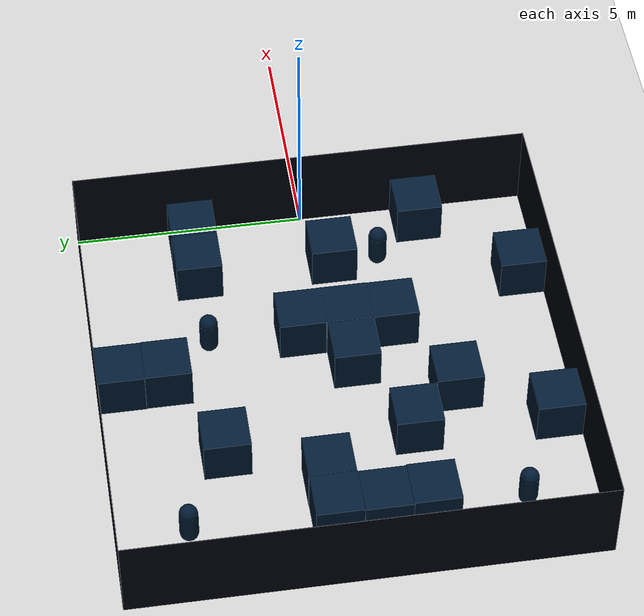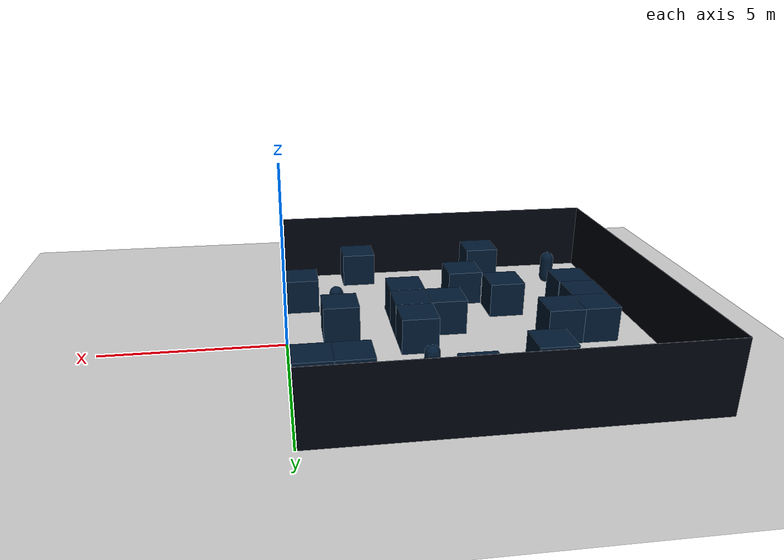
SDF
<sdf version='1.10'>
  <world name='rl_maze'>
    <physics name='1ms' type='ignored'>
      <max_step_size>0.0030000000000000001</max_step_size>
      <real_time_factor>1</real_time_factor>
      <real_time_update_rate>1000</real_time_update_rate>
    </physics>
    <plugin name='gz::sim::systems::Physics' filename='gz-sim-physics-system'/>
    <plugin name='gz::sim::systems::UserCommands' filename='gz-sim-user-commands-system'/>
    <plugin name='gz::sim::systems::SceneBroadcaster' filename='gz-sim-scene-broadcaster-system'/>
    <plugin name='gz::sim::systems::Contact' filename='gz-sim-contact-system'/>
    <gravity>0 0 -9.8000000000000007</gravity>
    <magnetic_field>6.0000000000000002e-06 2.3e-05 -4.1999999999999998e-05</magnetic_field>
    <atmosphere type='adiabatic'/>
    <scene>
      <ambient>0.400000006 0.400000006 0.400000006 1</ambient>
      <background>0.699999988 0.699999988 0.699999988 1</background>
      <shadows>true</shadows>
    </scene>
    <model name='ground_plane'>
      <static>true</static>
      <link name='link'>
        <collision name='collision'>
          <geometry>
            <plane>
              <normal>0 0 1</normal>
              <size>100 100</size>
            </plane>
          </geometry>
          <surface>
            <friction>
              <ode/>
            </friction>
            <bounce/>
            <contact/>
          </surface>
        </collision>
        <visual name='visual'>
          <geometry>
            <plane>
              <normal>0 0 1</normal>
              <size>100 100</size>
            </plane>
          </geometry>
          <material>
            <ambient>0.800000012 0.800000012 0.800000012 1</ambient>
            <diffuse>0.800000012 0.800000012 0.800000012 1</diffuse>
            <specular>0.800000012 0.800000012 0.800000012 1</specular>
          </material>
          <plugin name='__default__' filename='__default__'/>
        </visual>
        <pose>0 0 0 0 0 0</pose>
        <inertial>
          <pose>0 0 0 0 0 0</pose>
          <mass>1</mass>
          <inertia>
            <ixx>1</ixx>
            <ixy>0</ixy>
            <ixz>0</ixz>
            <iyy>1</iyy>
            <iyz>0</iyz>
            <izz>1</izz>
          </inertia>
        </inertial>
        <enable_wind>false</enable_wind>
      </link>
      <plugin name='__default__' filename='__default__'/>
      <pose>0 0 0 0 0 0</pose>
      <self_collide>false</self_collide>
    </model>
    <model name='border'>
      <pose>0 0 1 0 0 0</pose>
      <static>true</static>
      <link name='wall1'>
        <pose>-10.005000000000001 0 0 0 0 0</pose>
        <collision name='wall1_collision'>
          <geometry>
            <box>
              <size>0.01 10 2</size>
            </box>
          </geometry>
          <surface>
            <friction>
              <ode/>
            </friction>
            <bounce/>
            <contact/>
          </surface>
        </collision>
        <visual name='wall1_visual'>
          <geometry>
            <box>
              <size>0.01 10 2</size>
            </box>
          </geometry>
          <material>
            <ambient>0.100000001 0.100000001 0.100000001 1</ambient>
            <diffuse>0 0.00999999978 0.0500000007 1</diffuse>
            <specular>0 0.00999999978 0.0500000007 1</specular>
          </material>
        </visual>
        <inertial>
          <pose>0 0 0 0 0 0</pose>
          <mass>1</mass>
          <inertia>
            <ixx>1</ixx>
            <ixy>0</ixy>
            <ixz>0</ixz>
            <iyy>1</iyy>
            <iyz>0</iyz>
            <izz>1</izz>
          </inertia>
        </inertial>
        <enable_wind>false</enable_wind>
        <static>true</static>
      </link>
      <link name='wall2'>
        <pose>0 0 0 0 0 0</pose>
        <collision name='wall2_collision'>
          <geometry>
            <box>
              <size>0.01 10 2</size>
            </box>
          </geometry>
          <surface>
            <friction>
              <ode/>
            </friction>
            <bounce/>
            <contact/>
          </surface>
        </collision>
        <visual name='wall2_visual'>
          <geometry>
            <box>
              <size>0.01 10 2</size>
            </box>
          </geometry>
          <material>
            <ambient>0.100000001 0.100000001 0.100000001 1</ambient>
            <diffuse>0 0.00999999978 0.0500000007 1</diffuse>
            <specular>0 0.00999999978 0.0500000007 1</specular>
          </material>
        </visual>
        <inertial>
          <pose>0 0 0 0 0 0</pose>
          <mass>1</mass>
          <inertia>
            <ixx>1</ixx>
            <ixy>0</ixy>
            <ixz>0</ixz>
            <iyy>1</iyy>
            <iyz>0</iyz>
            <izz>1</izz>
          </inertia>
        </inertial>
        <enable_wind>false</enable_wind>
        <static>true</static>
      </link>
      <link name='wall3'>
        <pose>-5.0025000000000004 5.0025000000000004 0 0 0 0</pose>
        <collision name='wall3_collision'>
          <geometry>
            <box>
              <size>10 0.01 2</size>
            </box>
          </geometry>
          <surface>
            <friction>
              <ode/>
            </friction>
            <bounce/>
            <contact/>
          </surface>
        </collision>
        <visual name='wall3_visual'>
          <geometry>
            <box>
              <size>10 0.01 2</size>
            </box>
          </geometry>
          <material>
            <ambient>0.100000001 0.100000001 0.100000001 1</ambient>
            <diffuse>0 0.00999999978 0.0500000007 1</diffuse>
            <specular>0 0.00999999978 0.0500000007 1</specular>
          </material>
        </visual>
        <inertial>
          <pose>0 0 0 0 0 0</pose>
          <mass>1</mass>
          <inertia>
            <ixx>1</ixx>
            <ixy>0</ixy>
            <ixz>0</ixz>
            <iyy>1</iyy>
            <iyz>0</iyz>
            <izz>1</izz>
          </inertia>
        </inertial>
        <enable_wind>false</enable_wind>
        <static>true</static>
      </link>
      <link name='wall4'>
        <pose>-5.0025000000000004 -5.0025000000000004 0 0 0 0</pose>
        <collision name='wall4_collision'>
          <geometry>
            <box>
              <size>10 0.01 2</size>
            </box>
          </geometry>
          <surface>
            <friction>
              <ode/>
            </friction>
            <bounce/>
            <contact/>
          </surface>
          <material>
            <ambient>0.1 0.1 0.1 1</ambient>
            <diffuse>0 0.01 0.05 1</diffuse>
            <specular>0 0.01 0.05 1</specular>
          </material>
        </collision>
        <visual name='wall4_visual'>
          <geometry>
            <box>
              <size>10 0.01 2</size>
            </box>
          </geometry>
          <material>
            <ambient>0.100000001 0.100000001 0.100000001 1</ambient>
            <diffuse>0 0.00999999978 0.0500000007 1</diffuse>
            <specular>0 0.00999999978 0.0500000007 1</specular>
          </material>
        </visual>
        <inertial>
          <pose>0 0 0 0 0 0</pose>
          <mass>1</mass>
          <inertia>
            <ixx>1</ixx>
            <ixy>0</ixy>
            <ixz>0</ixz>
            <iyy>1</iyy>
            <iyz>0</iyz>
            <izz>1</izz>
          </inertia>
        </inertial>
        <enable_wind>false</enable_wind>
        <static>true</static>
      </link>
      <self_collide>false</self_collide>
    </model>
    <model name='box'>
      <static>true</static>
      <pose>-0.54182841829151007 2.4843379588245527 0.5 0 0 0</pose>
      <link name='box_link'>
        <inertial>
          <inertia>
            <ixx>0.16666</ixx>
            <ixy>0</ixy>
            <ixz>0</ixz>
            <iyy>0.16666</iyy>
            <iyz>0</iyz>
            <izz>0.16666</izz>
          </inertia>
          <mass>1</mass>
          <pose>0 0 0 0 0 0</pose>
        </inertial>
        <collision name='box_collision'>
          <geometry>
            <box>
              <size>1 1 1</size>
            </box>
          </geometry>
          <surface>
            <friction>
              <ode/>
            </friction>
            <bounce/>
            <contact/>
          </surface>
        </collision>
        <visual name='box_visual'>
          <geometry>
            <box>
              <size>1 1 1</size>
            </box>
          </geometry>
          <material>
            <ambient>0.100000001 0.100000001 0.100000001 1</ambient>
            <diffuse>0 0.100000001 0.200000003 1</diffuse>
            <specular>0 0.00999999978 0.0500000007 1</specular>
          </material>
        </visual>
        <pose>0 0 0 0 0 0</pose>
        <enable_wind>false</enable_wind>
      </link>
      <static>false</static>
      <self_collide>false</self_collide>
    </model>
    <model name='box_0'>
      <static>true</static>
      <pose>-4.4658708441967372 4.4940785161171686 0.5 0 0 0</pose>
      <link name='box_link'>
        <inertial>
          <inertia>
            <ixx>0.16666</ixx>
            <ixy>0</ixy>
            <ixz>0</ixz>
            <iyy>0.16666</iyy>
            <iyz>0</iyz>
            <izz>0.16666</izz>
          </inertia>
          <mass>1</mass>
          <pose>0 0 0 0 0 0</pose>
        </inertial>
        <collision name='box_collision'>
          <geometry>
            <box>
              <size>1 1 1</size>
            </box>
          </geometry>
          <surface>
            <friction>
              <ode/>
            </friction>
            <bounce/>
            <contact/>
          </surface>
        </collision>
        <visual name='box_visual'>
          <geometry>
            <box>
              <size>1 1 1</size>
            </box>
          </geometry>
          <material>
            <ambient>0.100000001 0.100000001 0.100000001 1</ambient>
            <diffuse>0 0.100000001 0.200000003 1</diffuse>
            <specular>0 0.00999999978 0.0500000007 1</specular>
          </material>
        </visual>
        <pose>0 0 0 0 0 0</pose>
        <enable_wind>false</enable_wind>
      </link>
      <static>false</static>
      <self_collide>false</self_collide>
    </model>
    <model name='box_1'>
      <static>true</static>
      <pose>-3.4833477158619064 -0.50489987961622029 0.5 0 0 0</pose>
      <link name='box_link'>
        <inertial>
          <inertia>
            <ixx>0.16666</ixx>
            <ixy>0</ixy>
            <ixz>0</ixz>
            <iyy>0.16666</iyy>
            <iyz>0</iyz>
            <izz>0.16666</izz>
          </inertia>
          <mass>1</mass>
          <pose>0 0 0 0 0 0</pose>
        </inertial>
        <collision name='box_collision'>
          <geometry>
            <box>
              <size>1 1 1</size>
            </box>
          </geometry>
          <surface>
            <friction>
              <ode/>
            </friction>
            <bounce/>
            <contact/>
          </surface>
        </collision>
        <visual name='box_visual'>
          <geometry>
            <box>
              <size>1 1 1</size>
            </box>
          </geometry>
          <material>
            <ambient>0.100000001 0.100000001 0.100000001 1</ambient>
            <diffuse>0 0.100000001 0.200000003 1</diffuse>
            <specular>0 0.00999999978 0.0500000007 1</specular>
          </material>
        </visual>
        <pose>0 0 0 0 0 0</pose>
        <enable_wind>false</enable_wind>
      </link>
      <static>false</static>
      <self_collide>false</self_collide>
    </model>
    <model name='box_2'>
      <static>true</static>
      <pose>-6.5101561736371032 2.5087672771673208 0.5 0 0 0</pose>
      <link name='box_link'>
        <inertial>
          <inertia>
            <ixx>0.16666</ixx>
            <ixy>0</ixy>
            <ixz>0</ixz>
            <iyy>0.16666</iyy>
            <iyz>0</iyz>
            <izz>0.16666</izz>
          </inertia>
          <mass>1</mass>
          <pose>0 0 0 0 0 0</pose>
        </inertial>
        <collision name='box_collision'>
          <geometry>
            <box>
              <size>1 1 1</size>
            </box>
          </geometry>
          <surface>
            <friction>
              <ode/>
            </friction>
            <bounce/>
            <contact/>
          </surface>
        </collision>
        <visual name='box_visual'>
          <geometry>
            <box>
              <size>1 1 1</size>
            </box>
          </geometry>
          <material>
            <ambient>0.100000001 0.100000001 0.100000001 1</ambient>
            <diffuse>0 0.100000001 0.200000003 1</diffuse>
            <specular>0 0.00999999978 0.0500000007 1</specular>
          </material>
        </visual>
        <pose>0 0 0 0 0 0</pose>
        <enable_wind>false</enable_wind>
      </link>
      <static>false</static>
      <self_collide>false</self_collide>
    </model>
    <model name='box_3'>
      <static>true</static>
      <pose>-8.4997181595917404 0.47247749954588636 0.5 0 0 0</pose>
      <link name='box_link'>
        <inertial>
          <inertia>
            <ixx>0.16666</ixx>
            <ixy>0</ixy>
            <ixz>0</ixz>
            <iyy>0.16666</iyy>
            <iyz>0</iyz>
            <izz>0.16666</izz>
          </inertia>
          <mass>1</mass>
          <pose>0 0 0 0 0 0</pose>
        </inertial>
        <collision name='box_collision'>
          <geometry>
            <box>
              <size>1 1 1</size>
            </box>
          </geometry>
          <surface>
            <friction>
              <ode/>
            </friction>
            <bounce/>
            <contact/>
          </surface>
        </collision>
        <visual name='box_visual'>
          <geometry>
            <box>
              <size>1 1 1</size>
            </box>
          </geometry>
          <material>
            <ambient>0.100000001 0.100000001 0.100000001 1</ambient>
            <diffuse>0 0.100000001 0.200000003 1</diffuse>
            <specular>0 0.00999999978 0.0500000007 1</specular>
          </material>
        </visual>
        <pose>0 0 0 0 0 0</pose>
        <enable_wind>false</enable_wind>
      </link>
      <static>false</static>
      <self_collide>false</self_collide>
    </model>
    <model name='box_4'>
      <static>true</static>
      <pose>-6.488043894509687 -4.4880006797179615 0.5 0 0 0</pose>
      <link name='box_link'>
        <inertial>
          <inertia>
            <ixx>0.16666</ixx>
            <ixy>0</ixy>
            <ixz>0</ixz>
            <iyy>0.16666</iyy>
            <iyz>0</iyz>
            <izz>0.16666</izz>
          </inertia>
          <mass>1</mass>
          <pose>0 0 0 0 0 0</pose>
        </inertial>
        <collision name='box_collision'>
          <geometry>
            <box>
              <size>1 1 1</size>
            </box>
          </geometry>
          <surface>
            <friction>
              <ode/>
            </friction>
            <bounce/>
            <contact/>
          </surface>
        </collision>
        <visual name='box_visual'>
          <geometry>
            <box>
              <size>1 1 1</size>
            </box>
          </geometry>
          <material>
            <ambient>0.100000001 0.100000001 0.100000001 1</ambient>
            <diffuse>0 0.100000001 0.200000003 1</diffuse>
            <specular>0 0.00999999978 0.0500000007 1</specular>
          </material>
        </visual>
        <pose>0 0 0 0 0 0</pose>
        <enable_wind>false</enable_wind>
      </link>
      <static>false</static>
      <self_collide>false</self_collide>
    </model>
    <model name='box_5'>
      <static>true</static>
      <pose>-2.4460336539434699 -4.5025240479080564 0.5 0 0 0</pose>
      <link name='box_link'>
        <inertial>
          <inertia>
            <ixx>0.16666</ixx>
            <ixy>0</ixy>
            <ixz>0</ixz>
            <iyy>0.16666</iyy>
            <iyz>0</iyz>
            <izz>0.16666</izz>
          </inertia>
          <mass>1</mass>
          <pose>0 0 0 0 0 0</pose>
        </inertial>
        <collision name='box_collision'>
          <geometry>
            <box>
              <size>1 1 1</size>
            </box>
          </geometry>
          <surface>
            <friction>
              <ode/>
            </friction>
            <bounce/>
            <contact/>
          </surface>
        </collision>
        <visual name='box_visual'>
          <geometry>
            <box>
              <size>1 1 1</size>
            </box>
          </geometry>
          <material>
            <ambient>0.100000001 0.100000001 0.100000001 1</ambient>
            <diffuse>0 0.100000001 0.200000003 1</diffuse>
            <specular>0 0.00999999978 0.0500000007 1</specular>
          </material>
        </visual>
        <pose>0 0 0 0 0 0</pose>
        <enable_wind>false</enable_wind>
      </link>
      <static>false</static>
      <self_collide>false</self_collide>
    </model>
    <model name='box_6'>
      <static>true</static>
      <pose>-6.4555978828922473 -1.5219204614274702 0.5 0 0 0</pose>
      <link name='box_link'>
        <inertial>
          <inertia>
            <ixx>0.16666</ixx>
            <ixy>0</ixy>
            <ixz>0</ixz>
            <iyy>0.16666</iyy>
            <iyz>0</iyz>
            <izz>0.16666</izz>
          </inertia>
          <mass>1</mass>
          <pose>0 0 0 0 0 0</pose>
        </inertial>
        <collision name='box_collision'>
          <geometry>
            <box>
              <size>1 1 1</size>
            </box>
          </geometry>
          <surface>
            <friction>
              <ode/>
            </friction>
            <bounce/>
            <contact/>
          </surface>
        </collision>
        <visual name='box_visual'>
          <geometry>
            <box>
              <size>1 1 1</size>
            </box>
          </geometry>
          <material>
            <ambient>0.100000001 0.100000001 0.100000001 1</ambient>
            <diffuse>0 0.100000001 0.200000003 1</diffuse>
            <specular>0 0.00999999978 0.0500000007 1</specular>
          </material>
        </visual>
        <pose>0 0 0 0 0 0</pose>
        <enable_wind>false</enable_wind>
      </link>
      <static>false</static>
      <self_collide>false</self_collide>
    </model>
    <model name='capsule'>
      <static>true</static>
      <pose>-1.4916519770848642 -1.5197144234491371 0.5 0 0 0</pose>
      <link name='capsule_link'>
        <inertial>
          <inertia>
            <ixx>0.074153999999999998</ixx>
            <ixy>0</ixy>
            <ixz>0</ixz>
            <iyy>0.074153999999999998</iyy>
            <iyz>0</iyz>
            <izz>0.018769000000000001</izz>
          </inertia>
          <mass>1</mass>
          <pose>0 0 0 0 0 0</pose>
        </inertial>
        <collision name='capsule_collision'>
          <geometry>
            <capsule>
              <radius>0.20000000000000001</radius>
              <length>0.59999999999999998</length>
            </capsule>
          </geometry>
          <surface>
            <friction>
              <ode/>
            </friction>
            <bounce/>
            <contact/>
          </surface>
        </collision>
        <visual name='capsule_visual'>
          <geometry>
            <capsule>
              <radius>0.20000000000000001</radius>
              <length>0.59999999999999998</length>
            </capsule>
          </geometry>
          <material>
            <ambient>0.100000001 0.100000001 0.100000001 1</ambient>
            <diffuse>0 0.100000001 0.200000003 1</diffuse>
            <specular>0 0.00999999978 0.0500000007 1</specular>
          </material>
        </visual>
        <pose>0 0 0 0 0 0</pose>
        <enable_wind>false</enable_wind>
      </link>
      <static>false</static>
      <self_collide>false</self_collide>
    </model>
    <model name='capsule_0'>
      <static>true</static>
      <pose>-3.4762836350512702 2.4746489200877768 0.5 0 0 0</pose>
      <link name='capsule_link'>
        <inertial>
          <inertia>
            <ixx>0.074153999999999998</ixx>
            <ixy>0</ixy>
            <ixz>0</ixz>
            <iyy>0.074153999999999998</iyy>
            <iyz>0</iyz>
            <izz>0.018769000000000001</izz>
          </inertia>
          <mass>1</mass>
          <pose>0 0 0 0 0 0</pose>
        </inertial>
        <collision name='capsule_collision'>
          <geometry>
            <capsule>
              <radius>0.20000000000000001</radius>
              <length>0.59999999999999998</length>
            </capsule>
          </geometry>
          <surface>
            <friction>
              <ode/>
            </friction>
            <bounce/>
            <contact/>
          </surface>
        </collision>
        <visual name='capsule_visual'>
          <geometry>
            <capsule>
              <radius>0.20000000000000001</radius>
              <length>0.59999999999999998</length>
            </capsule>
          </geometry>
          <material>
            <ambient>0.100000001 0.100000001 0.100000001 1</ambient>
            <diffuse>0 0.100000001 0.200000003 1</diffuse>
            <specular>0 0.00999999978 0.0500000007 1</specular>
          </material>
        </visual>
        <pose>0 0 0 0 0 0</pose>
        <enable_wind>false</enable_wind>
      </link>
      <static>false</static>
      <self_collide>false</self_collide>
    </model>
    <model name='capsule_1'>
      <static>true</static>
      <pose>-8.426124322941547 3.4883105932109406 0.5 0 0 0</pose>
      <link name='capsule_link'>
        <inertial>
          <inertia>
            <ixx>0.074153999999999998</ixx>
            <ixy>0</ixy>
            <ixz>0</ixz>
            <iyy>0.074153999999999998</iyy>
            <iyz>0</iyz>
            <izz>0.018769000000000001</izz>
          </inertia>
          <mass>1</mass>
          <pose>0 0 0 0 0 0</pose>
        </inertial>
        <collision name='capsule_collision'>
          <geometry>
            <capsule>
              <radius>0.20000000000000001</radius>
              <length>0.59999999999999998</length>
            </capsule>
          </geometry>
          <surface>
            <friction>
              <ode/>
            </friction>
            <bounce/>
            <contact/>
          </surface>
        </collision>
        <visual name='capsule_visual'>
          <geometry>
            <capsule>
              <radius>0.20000000000000001</radius>
              <length>0.59999999999999998</length>
            </capsule>
          </geometry>
          <material>
            <ambient>0.100000001 0.100000001 0.100000001 1</ambient>
            <diffuse>0 0.100000001 0.200000003 1</diffuse>
            <specular>0 0.00999999978 0.0500000007 1</specular>
          </material>
        </visual>
        <pose>0 0 0 0 0 0</pose>
        <enable_wind>false</enable_wind>
      </link>
      <static>false</static>
      <self_collide>false</self_collide>
    </model>
    <model name='box_7'>
      <static>true</static>
      <pose>-1.5382522697068355 2.4869971765134284 0.5 0 0 0</pose>
      <link name='box_link'>
        <inertial>
          <inertia>
            <ixx>0.16666</ixx>
            <ixy>0</ixy>
            <ixz>0</ixz>
            <iyy>0.16666</iyy>
            <iyz>0</iyz>
            <izz>0.16666</izz>
          </inertia>
          <mass>1</mass>
          <pose>0 0 0 0 0 0</pose>
        </inertial>
        <collision name='box_collision'>
          <geometry>
            <box>
              <size>1 1 1</size>
            </box>
          </geometry>
          <surface>
            <friction>
              <ode/>
            </friction>
            <bounce/>
            <contact/>
          </surface>
        </collision>
        <visual name='box_visual'>
          <geometry>
            <box>
              <size>1 1 1</size>
            </box>
          </geometry>
          <material>
            <ambient>0.100000001 0.100000001 0.100000001 1</ambient>
            <diffuse>0 0.100000001 0.200000003 1</diffuse>
            <specular>0 0.00999999978 0.0500000007 1</specular>
          </material>
        </visual>
        <pose>0 0 0 0 0 0</pose>
        <enable_wind>false</enable_wind>
      </link>
      <static>false</static>
      <self_collide>false</self_collide>
    </model>
    <model name='box_8'>
      <static>true</static>
      <pose>-3.486061639816243 0.50341417273942934 0.5 0 0 0</pose>
      <link name='box_link'>
        <inertial>
          <inertia>
            <ixx>0.16666</ixx>
            <ixy>0</ixy>
            <ixz>0</ixz>
            <iyy>0.16666</iyy>
            <iyz>0</iyz>
            <izz>0.16666</izz>
          </inertia>
          <mass>1</mass>
          <pose>0 0 0 0 0 0</pose>
        </inertial>
        <collision name='box_collision'>
          <geometry>
            <box>
              <size>1 1 1</size>
            </box>
          </geometry>
          <surface>
            <friction>
              <ode/>
            </friction>
            <bounce/>
            <contact/>
          </surface>
        </collision>
        <visual name='box_visual'>
          <geometry>
            <box>
              <size>1 1 1</size>
            </box>
          </geometry>
          <material>
            <ambient>0.100000001 0.100000001 0.100000001 1</ambient>
            <diffuse>0 0.100000001 0.200000003 1</diffuse>
            <specular>0 0.00999999978 0.0500000007 1</specular>
          </material>
        </visual>
        <pose>0 0 0 0 0 0</pose>
        <enable_wind>false</enable_wind>
      </link>
      <static>false</static>
      <self_collide>false</self_collide>
    </model>
    <model name='box_9'>
      <static>true</static>
      <pose>-3.4913263124236282 -1.5129200309120436 0.5 0 0 0</pose>
      <link name='box_link'>
        <inertial>
          <inertia>
            <ixx>0.16666</ixx>
            <ixy>0</ixy>
            <ixz>0</ixz>
            <iyy>0.16666</iyy>
            <iyz>0</iyz>
            <izz>0.16666</izz>
          </inertia>
          <mass>1</mass>
          <pose>0 0 0 0 0 0</pose>
        </inertial>
        <collision name='box_collision'>
          <geometry>
            <box>
              <size>1 1 1</size>
            </box>
          </geometry>
          <surface>
            <friction>
              <ode/>
            </friction>
            <bounce/>
            <contact/>
          </surface>
        </collision>
        <visual name='box_visual'>
          <geometry>
            <box>
              <size>1 1 1</size>
            </box>
          </geometry>
          <material>
            <ambient>0.100000001 0.100000001 0.100000001 1</ambient>
            <diffuse>0 0.100000001 0.200000003 1</diffuse>
            <specular>0 0.00999999978 0.0500000007 1</specular>
          </material>
        </visual>
        <pose>0 0 0 0 0 0</pose>
        <enable_wind>false</enable_wind>
      </link>
      <static>false</static>
      <self_collide>false</self_collide>
    </model>
    <model name='box_10'>
      <static>true</static>
      <pose>-4.4548540115356445 3.4916501045227051 0.5 0 0 0</pose>
      <link name='box_link'>
        <inertial>
          <inertia>
            <ixx>0.16666</ixx>
            <ixy>0</ixy>
            <ixz>0</ixz>
            <iyy>0.16666</iyy>
            <iyz>0</iyz>
            <izz>0.16666</izz>
          </inertia>
          <mass>1</mass>
          <pose>0 0 0 0 0 0</pose>
        </inertial>
        <collision name='box_collision'>
          <geometry>
            <box>
              <size>1 1 1</size>
            </box>
          </geometry>
          <surface>
            <friction>
              <ode/>
            </friction>
            <bounce/>
            <contact/>
          </surface>
        </collision>
        <visual name='box_visual'>
          <geometry>
            <box>
              <size>1 1 1</size>
            </box>
          </geometry>
          <material>
            <ambient>0.100000001 0.100000001 0.100000001 1</ambient>
            <diffuse>0 0.100000001 0.200000003 1</diffuse>
            <specular>0 0.00999999978 0.0500000007 1</specular>
          </material>
        </visual>
        <pose>0 0 0 0 0 0</pose>
        <enable_wind>false</enable_wind>
      </link>
      <static>false</static>
      <self_collide>false</self_collide>
    </model>
    <model name='box_11'>
      <static>true</static>
      <pose>-4.4917688785630361 -0.52109418571552801 0.5 0 0 0</pose>
      <link name='box_link'>
        <inertial>
          <inertia>
            <ixx>0.16666</ixx>
            <ixy>0</ixy>
            <ixz>0</ixz>
            <iyy>0.16666</iyy>
            <iyz>0</iyz>
            <izz>0.16666</izz>
          </inertia>
          <mass>1</mass>
          <pose>0 0 0 0 0 0</pose>
        </inertial>
        <collision name='box_collision'>
          <geometry>
            <box>
              <size>1 1 1</size>
            </box>
          </geometry>
          <surface>
            <friction>
              <ode/>
            </friction>
            <bounce/>
            <contact/>
          </surface>
        </collision>
        <visual name='box_visual'>
          <geometry>
            <box>
              <size>1 1 1</size>
            </box>
          </geometry>
          <material>
            <ambient>0.100000001 0.100000001 0.100000001 1</ambient>
            <diffuse>0 0.100000001 0.200000003 1</diffuse>
            <specular>0 0.00999999978 0.0500000007 1</specular>
          </material>
        </visual>
        <pose>0 0 0 0 0 0</pose>
        <enable_wind>false</enable_wind>
      </link>
      <static>false</static>
      <self_collide>false</self_collide>
    </model>
    <model name='box_12'>
      <static>true</static>
      <pose>-7.4962139076998717 0.48222802762552663 0.5 0 0 0</pose>
      <link name='box_link'>
        <inertial>
          <inertia>
            <ixx>0.16666</ixx>
            <ixy>0</ixy>
            <ixz>0</ixz>
            <iyy>0.16666</iyy>
            <iyz>0</iyz>
            <izz>0.16666</izz>
          </inertia>
          <mass>1</mass>
          <pose>0 0 0 0 0 0</pose>
        </inertial>
        <collision name='box_collision'>
          <geometry>
            <box>
              <size>1 1 1</size>
            </box>
          </geometry>
          <surface>
            <friction>
              <ode/>
            </friction>
            <bounce/>
            <contact/>
          </surface>
        </collision>
        <visual name='box_visual'>
          <geometry>
            <box>
              <size>1 1 1</size>
            </box>
          </geometry>
          <material>
            <ambient>0.100000001 0.100000001 0.100000001 1</ambient>
            <diffuse>0 0.100000001 0.200000003 1</diffuse>
            <specular>0 0.00999999978 0.0500000007 1</specular>
          </material>
        </visual>
        <pose>0 0 0 0 0 0</pose>
        <enable_wind>false</enable_wind>
      </link>
      <static>false</static>
      <self_collide>false</self_collide>
    </model>
    <model name='box_13'>
      <static>true</static>
      <pose>-8.516860561904517 -0.52873783257579454 0.5 0 0 0</pose>
      <link name='box_link'>
        <inertial>
          <inertia>
            <ixx>0.16666</ixx>
            <ixy>0</ixy>
            <ixz>0</ixz>
            <iyy>0.16666</iyy>
            <iyz>0</iyz>
            <izz>0.16666</izz>
          </inertia>
          <mass>1</mass>
          <pose>0 0 0 0 0 0</pose>
        </inertial>
        <collision name='box_collision'>
          <geometry>
            <box>
              <size>1 1 1</size>
            </box>
          </geometry>
          <surface>
            <friction>
              <ode/>
            </friction>
            <bounce/>
            <contact/>
          </surface>
        </collision>
        <visual name='box_visual'>
          <geometry>
            <box>
              <size>1 1 1</size>
            </box>
          </geometry>
          <material>
            <ambient>0.100000001 0.100000001 0.100000001 1</ambient>
            <diffuse>0 0.100000001 0.200000003 1</diffuse>
            <specular>0 0.00999999978 0.0500000007 1</specular>
          </material>
        </visual>
        <pose>0 0 0 0 0 0</pose>
        <enable_wind>false</enable_wind>
      </link>
      <static>false</static>
      <self_collide>false</self_collide>
    </model>
    <model name='box_14'>
      <static>true</static>
      <pose>-8.4917276192972277 -1.5263066190670693 0.5 0 0 0</pose>
      <link name='box_link'>
        <inertial>
          <inertia>
            <ixx>0.16666</ixx>
            <ixy>0</ixy>
            <ixz>0</ixz>
            <iyy>0.16666</iyy>
            <iyz>0</iyz>
            <izz>0.16666</izz>
          </inertia>
          <mass>1</mass>
          <pose>0 0 0 0 0 0</pose>
        </inertial>
        <collision name='box_collision'>
          <geometry>
            <box>
              <size>1 1 1</size>
            </box>
          </geometry>
          <surface>
            <friction>
              <ode/>
            </friction>
            <bounce/>
            <contact/>
          </surface>
        </collision>
        <visual name='box_visual'>
          <geometry>
            <box>
              <size>1 1 1</size>
            </box>
          </geometry>
          <material>
            <ambient>0.100000001 0.100000001 0.100000001 1</ambient>
            <diffuse>0 0.100000001 0.200000003 1</diffuse>
            <specular>0 0.00999999978 0.0500000007 1</specular>
          </material>
        </visual>
        <pose>0 0 0 0 0 0</pose>
        <enable_wind>false</enable_wind>
      </link>
      <static>false</static>
      <self_collide>false</self_collide>
    </model>
    <model name='capsule_2'>
      <static>true</static>
      <pose>-8.515505658891648 -3.4933256151269956 0.5 0 0 0</pose>
      <link name='capsule_link'>
        <inertial>
          <inertia>
            <ixx>0.074153999999999998</ixx>
            <ixy>0</ixy>
            <ixz>0</ixz>
            <iyy>0.074153999999999998</iyy>
            <iyz>0</iyz>
            <izz>0.018769000000000001</izz>
          </inertia>
          <mass>1</mass>
          <pose>0 0 0 0 0 0</pose>
        </inertial>
        <collision name='capsule_collision'>
          <geometry>
            <capsule>
              <radius>0.20000000000000001</radius>
              <length>0.59999999999999998</length>
            </capsule>
          </geometry>
          <surface>
            <friction>
              <ode/>
            </friction>
            <bounce/>
            <contact/>
          </surface>
        </collision>
        <visual name='capsule_visual'>
          <geometry>
            <capsule>
              <radius>0.20000000000000001</radius>
              <length>0.59999999999999998</length>
            </capsule>
          </geometry>
          <material>
            <ambient>0.100000001 0.100000001 0.100000001 1</ambient>
            <diffuse>0 0.100000001 0.200000003 1</diffuse>
            <specular>0 0.00999999978 0.0500000007 1</specular>
          </material>
        </visual>
        <pose>0 0 0 0 0 0</pose>
        <enable_wind>false</enable_wind>
      </link>
      <static>false</static>
      <self_collide>false</self_collide>
    </model>
    <model name='box_15'>
      <static>true</static>
      <pose>-5.4467844939551577 -2.5539505425280473 0.5 0 0 0</pose>
      <link name='box_link'>
        <inertial>
          <inertia>
            <ixx>0.16666</ixx>
            <ixy>0</ixy>
            <ixz>0</ixz>
            <iyy>0.16666</iyy>
            <iyz>0</iyz>
            <izz>0.16666</izz>
          </inertia>
          <mass>1</mass>
          <pose>0 0 0 0 0 0</pose>
        </inertial>
        <collision name='box_collision'>
          <geometry>
            <box>
              <size>1 1 1</size>
            </box>
          </geometry>
          <surface>
            <friction>
              <ode/>
            </friction>
            <bounce/>
            <contact/>
          </surface>
        </collision>
        <visual name='box_visual'>
          <geometry>
            <box>
              <size>1 1 1</size>
            </box>
          </geometry>
          <material>
            <ambient>0.100000001 0.100000001 0.100000001 1</ambient>
            <diffuse>0 0.100000001 0.200000003 1</diffuse>
            <specular>0 0.00999999978 0.0500000007 1</specular>
          </material>
        </visual>
        <pose>0 0 0 0 0 0</pose>
        <enable_wind>false</enable_wind>
      </link>
      <static>false</static>
      <self_collide>false</self_collide>
    </model>
    <model name='box_16'>
      <static>true</static>
      <pose>-1.4969355082928826 -0.48732656685572828 0.5 0 0 0</pose>
      <link name='box_link'>
        <inertial>
          <inertia>
            <ixx>0.16666</ixx>
            <ixy>0</ixy>
            <ixz>0</ixz>
            <iyy>0.16666</iyy>
            <iyz>0</iyz>
            <izz>0.16666</izz>
          </inertia>
          <mass>1</mass>
          <pose>0 0 0 0 0 0</pose>
        </inertial>
        <collision name='box_collision'>
          <geometry>
            <box>
              <size>1 1 1</size>
            </box>
          </geometry>
          <surface>
            <friction>
              <ode/>
            </friction>
            <bounce/>
            <contact/>
          </surface>
        </collision>
        <visual name='box_visual'>
          <geometry>
            <box>
              <size>1 1 1</size>
            </box>
          </geometry>
          <material>
            <ambient>0.100000001 0.100000001 0.100000001 1</ambient>
            <diffuse>0 0.100000001 0.200000003 1</diffuse>
            <specular>0 0.00999999978 0.0500000007 1</specular>
          </material>
        </visual>
        <pose>0 0 0 0 0 0</pose>
        <enable_wind>false</enable_wind>
      </link>
      <static>false</static>
      <self_collide>false</self_collide>
    </model>
    <model name='box_17'>
      <static>true</static>
      <pose>-0.51935038650353582 -2.5400750346171996 0.5 0 0 0</pose>
      <link name='box_link'>
        <inertial>
          <inertia>
            <ixx>0.16666</ixx>
            <ixy>0</ixy>
            <ixz>0</ixz>
            <iyy>0.16666</iyy>
            <iyz>0</iyz>
            <izz>0.16666</izz>
          </inertia>
          <mass>1</mass>
          <pose>0 0 0 0 0 0</pose>
        </inertial>
        <collision name='box_collision'>
          <geometry>
            <box>
              <size>1 1 1</size>
            </box>
          </geometry>
          <surface>
            <friction>
              <ode/>
            </friction>
            <bounce/>
            <contact/>
          </surface>
        </collision>
        <visual name='box_visual'>
          <geometry>
            <box>
              <size>1 1 1</size>
            </box>
          </geometry>
          <material>
            <ambient>0.100000001 0.100000001 0.100000001 1</ambient>
            <diffuse>0 0.100000001 0.200000003 1</diffuse>
            <specular>0 0.00999999978 0.0500000007 1</specular>
          </material>
        </visual>
        <pose>0 0 0 0 0 0</pose>
        <enable_wind>false</enable_wind>
      </link>
      <static>false</static>
      <self_collide>false</self_collide>
    </model>
    <light name='sun' type='directional'>
      <pose>0 0 10 0 0 0</pose>
      <cast_shadows>true</cast_shadows>
      <intensity>1</intensity>
      <direction>-0.5 0.10000000000000001 -0.90000000000000002</direction>
      <diffuse>0.800000012 0.800000012 0.800000012 1</diffuse>
      <specular>0.200000003 0.200000003 0.200000003 1</specular>
      <attenuation>
        <range>1000</range>
        <linear>0.01</linear>
        <constant>0.90000000000000002</constant>
        <quadratic>0.001</quadratic>
      </attenuation>
      <spot>
        <inner_angle>0</inner_angle>
        <outer_angle>0</outer_angle>
        <falloff>0</falloff>
      </spot>
    </light>
  </world>
</sdf>
